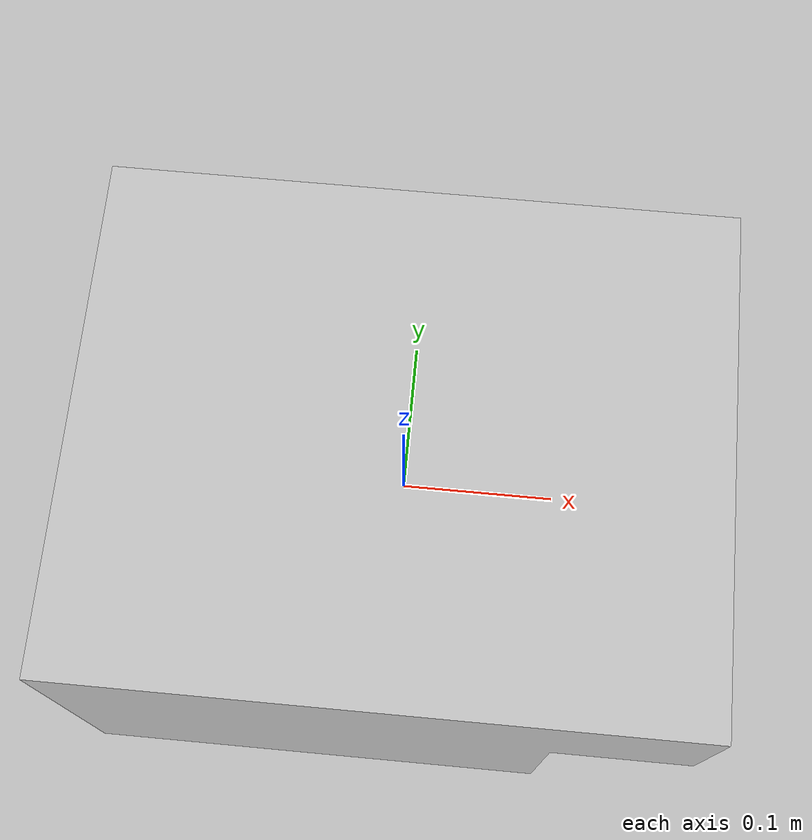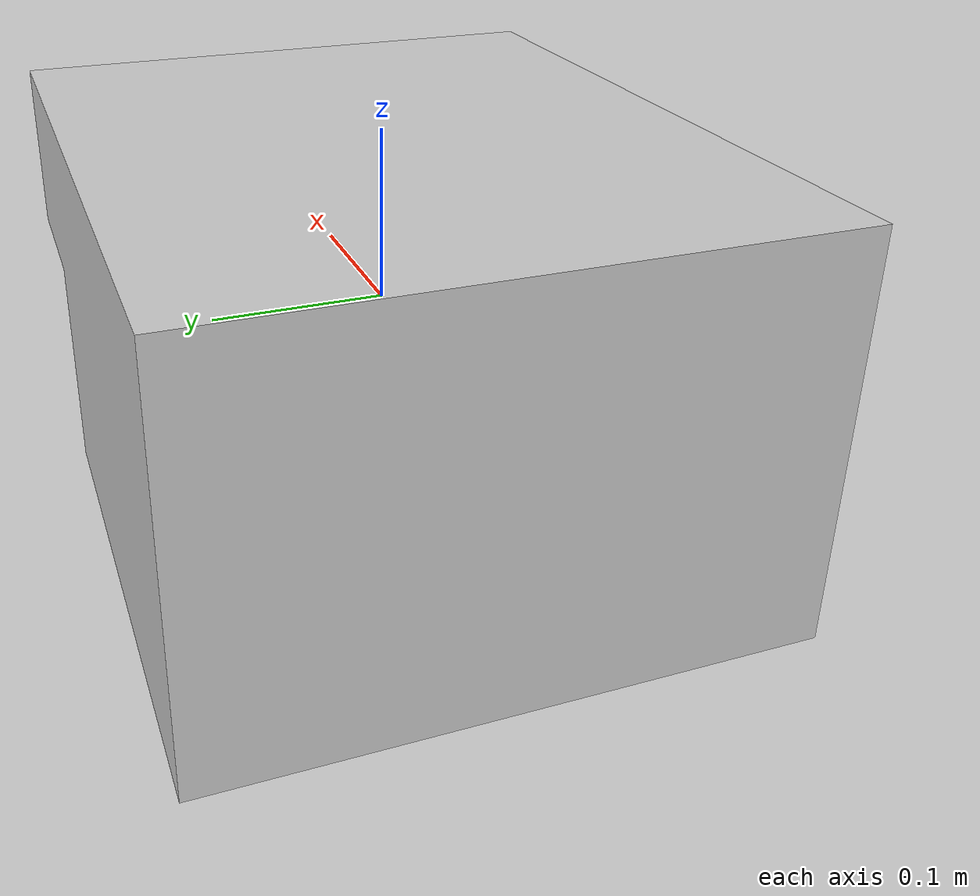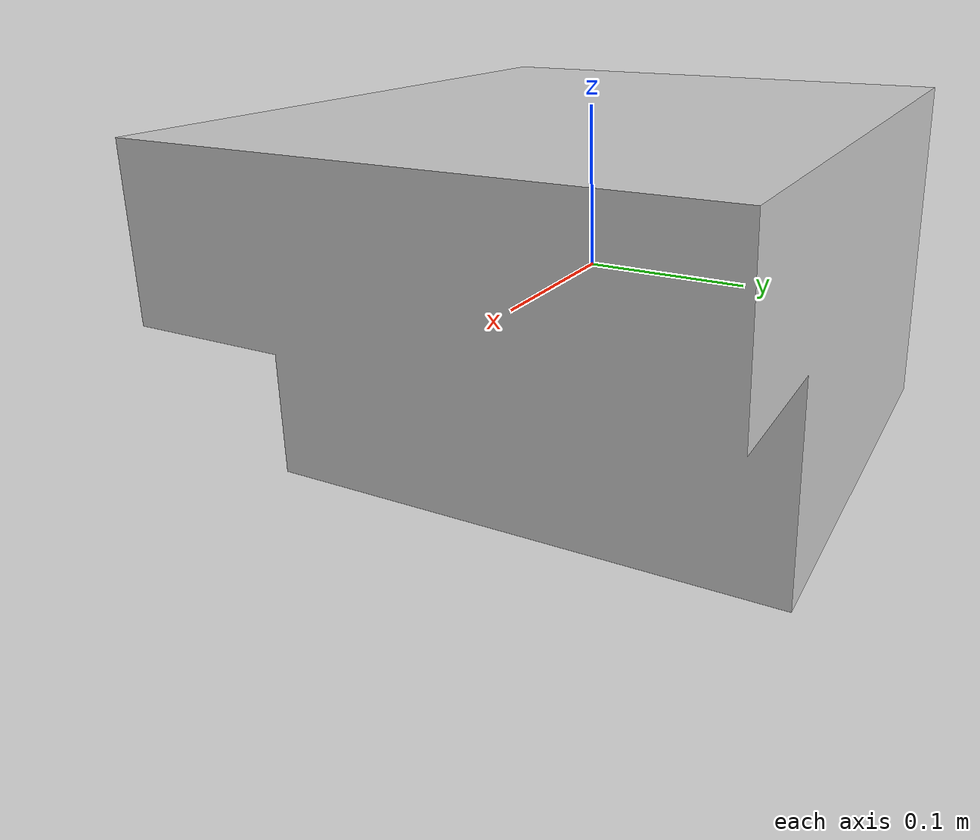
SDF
<?xml version='1.0'?>
<sdf version='1.5'>
  <model name='BlueRov2'>
    <pose>0 0 0 0 0 0</pose>
    <link name='base_link'>
      <inertial>
        <mass>11</mass>
        <inertia>
          <ixx>0.1</ixx>
          <ixy>0</ixy>
          <ixz>0</ixz>
          <iyy>0.1</iyy>
          <iyz>0</iyz>
          <izz>0.1</izz>
        </inertia>
      </inertial>
	  <visual name='base_link_visual'>
        <geometry>
          <mesh>
            <scale>0.1 0.1 0.1</scale>
            <uri>model://BlueRov2/meshes/BlueRov2.stl</uri>
          </mesh>
        </geometry>
      </visual>
      <collision name='base_link_collision'>
	  <pose>0 0 -0.025 0 3.1415926 -1.57079633</pose>
        <geometry>
          <mesh>
            <uri>model://BlueRov2/meshes/bluerov_collision.dae</uri>
          </mesh>
        </geometry>
      </collision>
      <sensor name="imu_sensor" type="imu">
        <pose>0 0 0 0 0 0</pose>
        <always_on>1</always_on>
        <update_rate>1000.0</update_rate>
      </sensor>

      <sensor type="camera" name="camera_left">
	    <pose>0.21 0.03 0.07 0 0 0</pose>
        <update_rate>30.0</update_rate>
        <camera name="head">
          <horizontal_fov>1.3962634</horizontal_fov>
          <image>
            <width>800</width>
            <height>600</height>
            <format>R8G8B8</format>
          </image>
          <clip>
            <near>0.02</near>
            <far>300</far>
          </clip>
          <noise>
            <type>gaussian</type>
            <!-- Noise is sampled independently per pixel on each frame.
                That pixel's noise value is added to each of its color
                channels, which at that point lie in the range [0,1]. -->
            <mean>0.0</mean>
            <stddev>0.007</stddev>
          </noise>
        </camera>
        <plugin name="GstCameraPlugin" filename="libgazebo_gst_camera_plugin.so">
          <robotNamespace></robotNamespace>
          <udpPort>5600</udpPort>
        </plugin>
      </sensor>
	  <sensor type="camera" name="camera_right">
	    <pose>0.21 -0.03 0.07 0 0 0</pose>
        <update_rate>30.0</update_rate>
        <camera name="head">
          <horizontal_fov>1.3962634</horizontal_fov>
          <image>
            <width>800</width>
            <height>600</height>
            <format>R8G8B8</format>
          </image>
          <clip>
            <near>0.02</near>
            <far>300</far>
          </clip>
          <noise>
            <type>gaussian</type>
            <!-- Noise is sampled independently per pixel on each frame.
                That pixel's noise value is added to each of its color
                channels, which at that point lie in the range [0,1]. -->
            <mean>0.0</mean>
            <stddev>0.007</stddev>
          </noise>
        </camera>
        <plugin name="GstCameraPlugin" filename="libgazebo_gst_camera_plugin.so">
          <robotNamespace></robotNamespace>
          <udpPort>5601</udpPort>
        </plugin>
      </sensor>
	  <sensor type="camera" name="camera_back">
	    <pose>-0.21 0 0.07 0 0 3.1415</pose>
        <update_rate>30.0</update_rate>
        <camera name="head">
          <horizontal_fov>1.3962634</horizontal_fov>
          <image>
            <width>800</width>
            <height>600</height>
            <format>R8G8B8</format>
          </image>
          <clip>
            <near>0.02</near>
            <far>300</far>
          </clip>
          <noise>
            <type>gaussian</type>
            <!-- Noise is sampled independently per pixel on each frame.
                That pixel's noise value is added to each of its color
                channels, which at that point lie in the range [0,1]. -->
            <mean>0.0</mean>
            <stddev>0.007</stddev>
          </noise>
        </camera>
        <plugin name="GstCameraPlugin" filename="libgazebo_gst_camera_plugin.so">
          <robotNamespace></robotNamespace>
          <udpPort>5602</udpPort>
        </plugin>
      </sensor>
    </link>

    <link name='thruster1'>
      <pose>0.12 -0.11 0 1.5707963 1.5707963 -0.78539815</pose>
      <inertial>
        <mass>1e-10</mass>
        <inertia>
          <ixx>1</ixx>
          <ixy>0</ixy>
          <ixz>0</ixz>
          <iyy>1</iyy>
          <iyz>0</iyz>
          <izz>1</izz>
        </inertia>
      </inertial>
    </link>
    <joint name='thruster1_joint' type='fixed'>
      <parent>base_link</parent>
      <child>thruster1</child>
    </joint>

    <link name='thruster2'>
      <pose>0.12 0.11 0 1.5707963 1.5707963 3.92699075</pose>
      <inertial>
        <mass>1e-10</mass>
        <inertia>
          <ixx>1</ixx>
          <ixy>0</ixy>
          <ixz>0</ixz>
          <iyy>1</iyy>
          <iyz>0</iyz>
          <izz>1</izz>
        </inertia>
      </inertial>
    </link>
    <joint name='thruster2_joint' type='fixed'>
      <parent>base_link</parent>
      <child>thruster2</child>
      <axis>
        <xyz>0 0 1</xyz>
        <use_parent_model_frame>1</use_parent_model_frame>
      </axis>
    </joint>

    <link name='thruster3'>
      <pose>-0.12 -0.11 0 1.5707963 1.5707963 0.78540075</pose>
      <inertial>
        <mass>1e-10</mass>
        <inertia>
          <ixx>1</ixx>
          <ixy>0</ixy>
          <ixz>0</ixz>
          <iyy>1</iyy>
          <iyz>0</iyz>
          <izz>1</izz>
        </inertia>
      </inertial>
    </link>
    <joint name='thruster3_joint' type='fixed'>
      <parent>base_link</parent>
      <child>thruster3</child>
      <axis>
        <xyz>0 0 1</xyz>
        <use_parent_model_frame>1</use_parent_model_frame>
      </axis>
    </joint>

    <link name='thruster4'>
      <pose>-0.12 0.11 0 1.5707963 1.5707963 2.35619445</pose>
      <inertial>
        <mass>1e-10</mass>
        <inertia>
          <ixx>1</ixx>
          <ixy>0</ixy>
          <ixz>0</ixz>
          <iyy>1</iyy>
          <iyz>0</iyz>
          <izz>1</izz>
        </inertia>
      </inertial>
    </link>
    <joint name='thruster4_joint' type='fixed'>
      <parent>base_link</parent>
      <child>thruster4</child>
      <axis>
        <xyz>0 0 -1</xyz>
        <use_parent_model_frame>1</use_parent_model_frame>
      </axis>
    </joint>

    <link name='thruster5'>
      <pose>0 -0.11 0 3.1415926 0 0</pose>
      <inertial>
        <mass>1e-10</mass>
        <inertia>
          <ixx>1</ixx>
          <ixy>0</ixy>
          <ixz>0</ixz>
          <iyy>1</iyy>
          <iyz>0</iyz>
          <izz>1</izz>
        </inertia>
      </inertial>
    </link>
    <joint name='thruster5_joint' type='fixed'>
      <parent>base_link</parent>
      <child>thruster5</child>
      <axis>
        <xyz>0 -1 0</xyz>
        <use_parent_model_frame>1</use_parent_model_frame>
      </axis>
    </joint>

    <link name='thruster6'>
      <pose>0 0.11 0 3.1415926 0 0</pose>
      <inertial>
        <mass>1e-10</mass>
        <inertia>
          <ixx>1</ixx>
          <ixy>0</ixy>
          <ixz>0</ixz>
          <iyy>1</iyy>
          <iyz>0</iyz>
          <izz>1</izz>
        </inertia>
      </inertial>
    </link>
    <joint name='thruster6_joint' type='fixed'>
      <parent>base_link</parent>
      <child>thruster6</child>
      <axis>
        <xyz>0 1 0</xyz>
        <use_parent_model_frame>1</use_parent_model_frame>
      </axis>
    </joint>

    <allow_auto_disable>1</allow_auto_disable>

    <plugin name="ArduPilotPlugin" filename="libArduPilotPlugin.so">
      <fdm_addr>127.0.0.1</fdm_addr>
      <fdm_port_in>9002</fdm_port_in>
      <fdm_port_out>9003</fdm_port_out>-->
      <imuName>BlueRov2::base_link::imu_sensor</imuName>
      <connectionTimeoutMaxCount>5</connectionTimeoutMaxCount>

      <!--
        incoming control command [0, 1]
        so offset it by -0.5 to get [-0.5, 0.5].
        multiplier = 102
        Positive thrust = 51
        Negative thrust = -41
      -->
        <control channel="0">
          <type>EFFORT</type>
          <offset>-0.5</offset>
          <p_gain>1</p_gain>
          <i_gain>0</i_gain>
          <d_gain>0</d_gain>
          <i_max>0</i_max>
          <i_min>0</i_min>
          <cmd_max>51</cmd_max>
          <cmd_min>-40</cmd_min>
          <linkName>BlueRov2::thruster1</linkName>
          <multiplier>102</multiplier>
        </control>

        <control channel="1">
          <type>EFFORT</type>
          <offset>-0.5</offset>
          <p_gain>1</p_gain>
          <i_gain>0</i_gain>
          <d_gain>0</d_gain>
          <i_max>0</i_max>
          <i_min>0</i_min>
          <cmd_max>51</cmd_max>
          <cmd_min>-40</cmd_min>
          <linkName>BlueRov2::thruster2</linkName>
          <multiplier>102</multiplier>
        </control>

        <control channel="2">
          <type>EFFORT</type>
          <offset>-0.5</offset>
          <p_gain>1</p_gain>
          <i_gain>0</i_gain>
          <d_gain>0</d_gain>
          <i_max>0</i_max>
          <i_min>0</i_min>
          <cmd_max>51</cmd_max>
          <cmd_min>-40</cmd_min>
          <linkName>BlueRov2::thruster3</linkName>
          <multiplier>102</multiplier>
        </control>

        <control channel="3">
          <type>EFFORT</type>
          <offset>-0.5</offset>
          <p_gain>1</p_gain>
          <i_gain>0</i_gain>
          <d_gain>0</d_gain>
          <i_max>0</i_max>
          <i_min>0</i_min>
          <cmd_max>51</cmd_max>
          <cmd_min>-40</cmd_min>
          <linkName>BlueRov2::thruster4</linkName>
          <multiplier>102</multiplier>
        </control>

        <control channel="4">
          <type>EFFORT</type>
          <offset>-0.5</offset>
          <p_gain>1</p_gain>
          <i_gain>0</i_gain>
          <d_gain>0</d_gain>
          <i_max>0</i_max>
          <i_min>0</i_min>
          <cmd_max>51</cmd_max>
          <cmd_min>-40</cmd_min>
          <linkName>BlueRov2::thruster5</linkName>
          <multiplier>102</multiplier>

        </control>

        <control channel="5">
          <type>EFFORT</type>
          <offset>-0.5</offset>
          <p_gain>1</p_gain>
          <i_gain>0</i_gain>
          <d_gain>0</d_gain>
          <i_max>0</i_max>
          <i_min>0</i_min>
          <cmd_max>51</cmd_max>
          <cmd_min>-40</cmd_min>
          <linkName>BlueRov2::thruster6</linkName>
          <multiplier>102</multiplier>
        </control>
    </plugin>

    <!-- buoyancy plugin -->
    <plugin name="freebuoyancy_gazebo" filename="libfreebuoyancy_gazebo.so">
      <descriptionParam>robot_description</descriptionParam>
      <fluidTopic>current</fluidTopic>
      <velocityFactor>0.7</velocityFactor>
      <clampingValue>0.05</clampingValue>
      <seed>0</seed>
      <alwaysOn>true</alwaysOn>
      <updateRate>.001</updateRate>

      <link name="base_link">
        <buoyancy>
          <compensation>1.0001</compensation>
          <origin xyz= "0 0 0.3"/>
        </buoyancy>
      </link>
    </plugin>
  </model>
</sdf>
